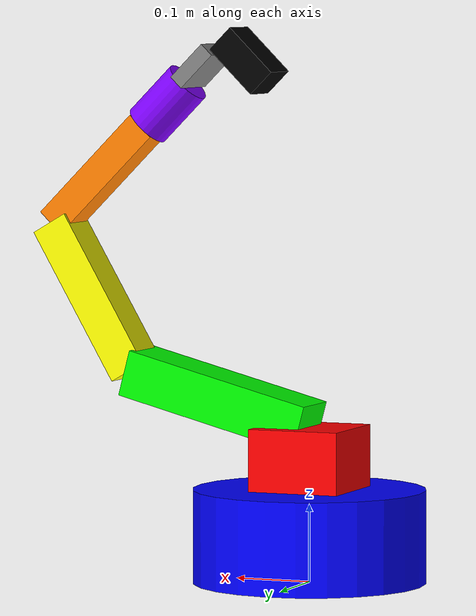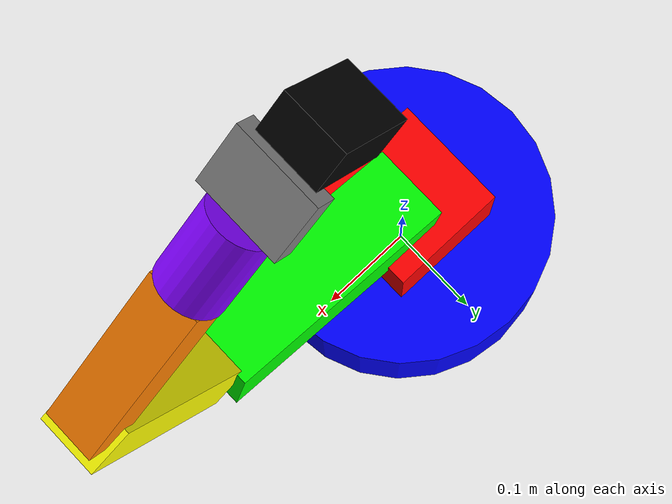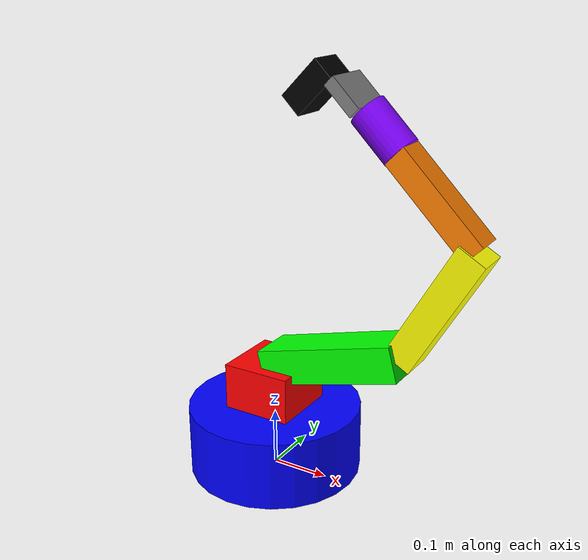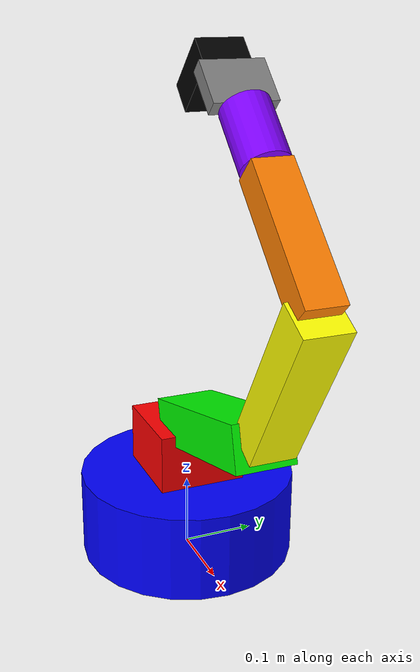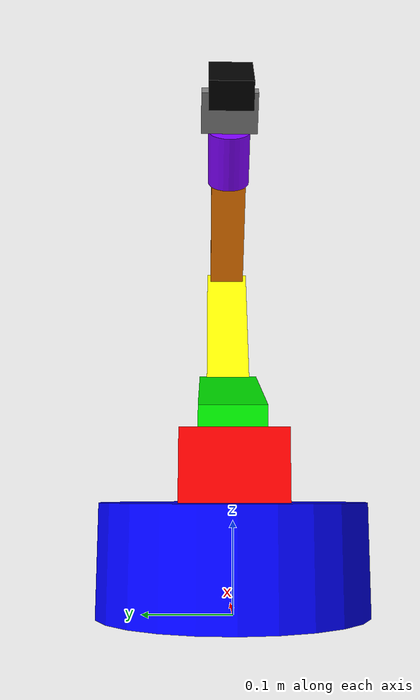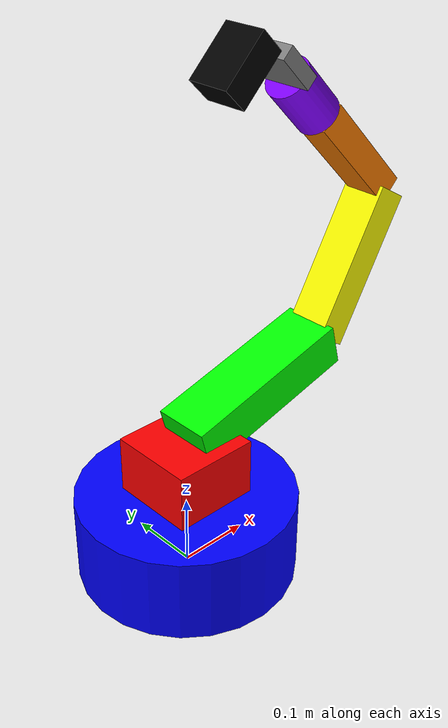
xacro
<?xml version="1.0"?>
<robot xmlns:xacro="http://www.ros.org/wiki/xacro" name="pegasus">
    <xacro:arg name="initial_positions_file" default="initial_positions.yaml" />

    <!-- Import pegasus urdf file -->
    <xacro:include filename="$(find pegasus_arm_description)/URDF/pegasus_arm.urdf.xacro" />

    <!-- Import control_xacro -->
    <xacro:include filename="pegasus.ros2_control.xacro" />

    <!-- Removed FakeSystem to prevent duplicate interface errors -->

</robot>

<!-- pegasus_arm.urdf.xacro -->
<robot name="pegasus" xmlns:xacro="http://www.ros.org/wiki/xacro">

  <!-- World Link (required for world_to_base_joint) -->
  <link name="world"/>

  <!-- Base Link - Base mechanism with internal spur gear -->
  <link name="base_link">
    <visual>
      <geometry>
        <cylinder radius="0.15" length="0.12"/>
      </geometry>
      <origin xyz="0 0 0.06" rpy="0 0 0"/>
      <material name="blue">
        <color rgba="0.0 0.0 1.0 1.0"/>
      </material>
    </visual>
    <collision>
      <geometry>
        <cylinder radius="0.15" length="0.12"/>
      </geometry>
      <origin xyz="0 0 0.06" rpy="0 0 0"/>
    </collision>
    <inertial>
      <origin xyz="0 0 0.06" rpy="0 0 0"/>
      <mass value="2.0"/>
      <inertia ixx="0.02" ixy="0" ixz="0" iyy="0.02" iyz="0" izz="0.035"/>
    </inertial>
  </link>

  <!-- Link 1 - Base upper part (Joint 5 in report - Base rotation) -->
  <link name="link1">
    <visual>
      <geometry><box size="0.12 0.12 0.08"/></geometry>
      <origin xyz="0 0 0.04" rpy="0 0 0"/>
      <material name="red">
        <color rgba="1.0 0.0 0.0 1.0"/>
      </material>
    </visual>
    <collision>
      <geometry><box size="0.12 0.12 0.08"/></geometry>
      <origin xyz="0 0 0.04" rpy="0 0 0"/>
    </collision>
    <inertial>
      <origin xyz="0 0 0.04" rpy="0 0 0"/>
      <mass value="0.8"/>
      <inertia ixx="0.008" ixy="0" ixz="0" iyy="0.008" iyz="0" izz="0.012"/>
    </inertial>
  </link>

  <!-- Link 2 - Shoulder link (Joint 4 in report - Shoulder joint with 2 motors) -->
  <link name="link2">
    <visual>
      <geometry><box size="0.25 0.08 0.06"/></geometry>
      <origin xyz="0.125 0 0" rpy="0 0 0"/>
      <material name="green">
        <color rgba="0.0 1.0 0.0 1.0"/>
      </material>
    </visual>
    <collision>
      <geometry><box size="0.25 0.08 0.06"/></geometry>
      <origin xyz="0.125 0 0" rpy="0 0 0"/>
    </collision>
    <inertial>
      <origin xyz="0.125 0 0" rpy="0 0 0"/>
      <mass value="0.7"/>
      <inertia ixx="0.005" ixy="0" ixz="0" iyy="0.015" iyz="0" izz="0.018"/>
    </inertial>
  </link>

  <!-- Link 3 - Upper arm link (Joint 3 in report - Elbow joint) -->
  <link name="link3">
    <visual>
      <geometry><box size="0.22 0.06 0.05"/></geometry>
      <origin xyz="0.11 0 0" rpy="0 0 0"/>
      <material name="yellow">
        <color rgba="1.0 1.0 0.0 1.0"/>
      </material>
    </visual>
    <collision>
      <geometry><box size="0.22 0.06 0.05"/></geometry>
      <origin xyz="0.11 0 0" rpy="0 0 0"/>
    </collision>
    <inertial>
      <origin xyz="0.11 0 0" rpy="0 0 0"/>
      <mass value="0.6"/>
      <inertia ixx="0.004" ixy="0" ixz="0" iyy="0.012" iyz="0" izz="0.014"/>
    </inertial>
  </link>

  <!-- Link 4 - Forearm link (Joint 2 in report) -->
  <link name="link4">
    <visual>
      <geometry><box size="0.18 0.05 0.04"/></geometry>
      <origin xyz="0.09 0 0" rpy="0 0 0"/>
      <material name="orange">
        <color rgba="1.0 0.5 0.0 1.0"/>
      </material>
    </visual>
    <collision>
      <geometry><box size="0.18 0.05 0.04"/></geometry>
      <origin xyz="0.09 0 0" rpy="0 0 0"/>
    </collision>
    <inertial>
      <origin xyz="0.09 0 0" rpy="0 0 0"/>
      <mass value="0.4"/>
      <inertia ixx="0.002" ixy="0" ixz="0" iyy="0.008" iyz="0" izz="0.009"/>
    </inertial>
  </link>

  <!-- Link 5 - Wrist link (Joint 1 in report - Wrist joint with 360° rotation) -->
  <link name="link5">
    <visual>
      <geometry><cylinder radius="0.03" length="0.08"/></geometry>
      <origin xyz="0.04 0 0" rpy="0 1.5708 0"/>
      <material name="purple">
        <color rgba="0.5 0.0 1.0 1.0"/>
      </material>
    </visual>
    <collision>
      <geometry><cylinder radius="0.03" length="0.08"/></geometry>
      <origin xyz="0.04 0 0" rpy="0 1.5708 0"/>
    </collision>
    <inertial>
      <origin xyz="0.04 0 0" rpy="0 0 0"/>
      <mass value="0.3"/>
      <inertia ixx="0.001" ixy="0" ixz="0" iyy="0.003" iyz="0" izz="0.003"/>
    </inertial>
  </link>

  <!-- Link 6 - Gripper mounting plate -->
  <link name="link6">
    <visual>
      <geometry><box size="0.06 0.08 0.02"/></geometry>
      <origin xyz="0.03 0 0" rpy="0 0 0"/>
      <material name="gray">
        <color rgba="0.5 0.5 0.5 1.0"/>
      </material>
    </visual>
    <collision>
      <geometry><box size="0.06 0.08 0.02"/></geometry>
      <origin xyz="0.03 0 0" rpy="0 0 0"/>
    </collision>
    <inertial>
      <origin xyz="0.03 0 0" rpy="0 0 0"/>
      <mass value="0.2"/>
      <inertia ixx="0.0008" ixy="0" ixz="0" iyy="0.0015" iyz="0" izz="0.002"/>
    </inertial>
  </link>

  <!-- End Effector Link - Gripper -->
  <link name="end_effector_link">
    <visual>
      <geometry><box size="0.04 0.06 0.08"/></geometry>
      <origin xyz="0.02 0 0.04" rpy="0 0 0"/>
      <material name="black">
        <color rgba="0.0 0.0 0.0 1.0"/>
      </material>
    </visual>
    <collision>
      <geometry><box size="0.04 0.06 0.08"/></geometry>
      <origin xyz="0.02 0 0.04" rpy="0 0 0"/>
    </collision>
    <inertial>
      <origin xyz="0.02 0 0.04" rpy="0 0 0"/>
      <mass value="0.15"/>
      <inertia ixx="0.0005" ixy="0" ixz="0" iyy="0.0008" iyz="0" izz="0.0008"/>
    </inertial>
  </link>

  <!-- Fixed joint from world to base -->
  <joint name="world_to_base_joint" type="fixed">
    <parent link="world"/>
    <child link="base_link"/>
    <origin xyz="0 0 0" rpy="0 0 0"/>
  </joint>

  <!-- Joint 1 - Base rotation (360° rotation) - Start at 0 (no change) -->
  <joint name="joint1" type="revolute">
    <parent link="base_link"/>
    <child link="link1"/>
    <origin xyz="0 0 0.12" rpy="0 0 0"/>
    <axis xyz="0 0 1"/>
    <limit lower="-6.28" upper="6.28" velocity="1.0" effort="111.0"/>
    <safety_controller k_velocity="0.1" k_position="0.1"/>
    <dynamics damping="0.2" friction="0.3"/>
  </joint>

  <!-- Joint 2 - Shoulder joint (35° range) - Start at -15° to lift arm up -->
  <joint name="joint2" type="revolute">
    <parent link="link1"/>
    <child link="link2"/>
    <origin xyz="0 0 0.08" rpy="0 -0.26 0"/>  <!-- -15° initial position -->
    <axis xyz="0 1 0"/>
    <limit lower="-0.61" upper="0.61" velocity="1.0" effort="60.0"/>
    <safety_controller k_velocity="0.1" k_position="0.1"/>
    <dynamics damping="0.15" friction="0.2"/>
  </joint>

  <!-- Joint 3 - Elbow joint (100° range) - Start at -45° to bend elbow -->
  <joint name="joint3" type="revolute">
    <parent link="link2"/>
    <child link="link3"/>
    <origin xyz="0.25 0 0" rpy="0 -0.785 0"/>  <!-- -45° initial position -->
    <axis xyz="0 1 0"/>
    <limit lower="-1.75" upper="1.75" velocity="1.0" effort="30.0"/>
    <safety_controller k_velocity="0.1" k_position="0.1"/>
    <dynamics damping="0.1" friction="0.15"/>
  </joint>

  <!-- Joint 4 - Forearm joint (75° range) - Start at -30° to continue bend -->
  <joint name="joint4" type="revolute">
    <parent link="link3"/>
    <child link="link4"/>
    <origin xyz="0.22 0 0" rpy="0 -1.31 0"/><!-- -210° initial position -->
    <axis xyz="0 1 0"/>
    <limit lower="-1.31" upper="1.31" velocity="1.0" effort="30.0"/>
    <safety_controller k_velocity="0.1" k_position="0.1"/>
    <dynamics damping="0.1" friction="0.1"/>
  </joint>

  <!-- Joint 5 - Wrist rotation (360° rotation) - Start at 0 (no change) -->
  <joint name="joint5" type="revolute">
    <parent link="link4"/>
    <child link="link5"/>
    <origin xyz="0.18 0 0" rpy="0 0 0"/>
    <axis xyz="1 0 0"/>
    <limit lower="-6.28" upper="6.28" velocity="1.0" effort="30.0"/>
    <safety_controller k_velocity="0.1" k_position="0.1"/>
    <dynamics damping="0.05" friction="0.05"/>
  </joint>

  <!-- Joint 6 - Gripper mounting (fixed) -->
  <joint name="joint6" type="fixed">
    <parent link="link5"/>
    <child link="link6"/>
    <origin xyz="0.08 0 0" rpy="0 0 0"/>
  </joint>

  <!-- Joint from gripper mount to end effector -->
  <joint name="joint6_to_end_effector" type="fixed">
    <parent link="link6"/>
    <child link="end_effector_link"/>
    <origin xyz="0.06 0 0" rpy="0 0 0"/>
  </joint>

  <!-- ros2_control Configuration -->
  <ros2_control name="PegasusArm" type="system">
    <hardware>
      <plugin>mock_components/GenericSystem</plugin>
    </hardware>
    <joint name="joint1">
      <command_interface name="position">
        <param name="min">-6.28</param>
        <param name="max">6.28</param>
      </command_interface>
      <state_interface name="position"/>
      <state_interface name="velocity"/>
    </joint>
    <joint name="joint2">
      <command_interface name="position">
        <param name="min">-0.61</param>
        <param name="max">0.61</param>
      </command_interface>
      <state_interface name="position"/>
      <state_interface name="velocity"/>
    </joint>
    <joint name="joint3">
      <command_interface name="position">
        <param name="min">-1.75</param>
        <param name="max">1.75</param>
      </command_interface>
      <state_interface name="position"/>
      <state_interface name="velocity"/>
    </joint>
    <joint name="joint4">
      <command_interface name="position">
        <param name="min">-1.31</param>
        <param name="max">1.31</param>
      </command_interface>
      <state_interface name="position"/>
      <state_interface name="velocity"/>
    </joint>
    <joint name="joint5">
      <command_interface name="position">
        <param name="min">-6.28</param>
        <param name="max">6.28</param>
      </command_interface>
      <state_interface name="position"/>
      <state_interface name="velocity"/>
    </joint>
  </ros2_control>

  <!-- Gazebo-specific tags -->
  <gazebo>
    <plugin name="gazebo_ros_control" filename="libgazebo_ros_control.so">
      <robotNamespace>/pegasus</robotNamespace>
    </plugin>
  </gazebo>

  <!-- Gazebo material properties for better visualization -->
  <gazebo reference="base_link">
    <material>Gazebo/Blue</material>
    <mu1>0.2</mu1>
    <mu2>0.2</mu2>
  </gazebo>

  <gazebo reference="link1">
    <material>Gazebo/Red</material>
    <mu1>0.2</mu1>
    <mu2>0.2</mu2>
  </gazebo>

  <gazebo reference="link2">
    <material>Gazebo/Green</material>
    <mu1>0.2</mu1>
    <mu2>0.2</mu2>
  </gazebo>

  <gazebo reference="link3">
    <material>Gazebo/Yellow</material>
    <mu1>0.2</mu1>
    <mu2>0.2</mu2>
  </gazebo>

  <gazebo reference="link4">
    <material>Gazebo/Orange</material>
    <mu1>0.2</mu1>
    <mu2>0.2</mu2>
  </gazebo>

  <gazebo reference="link5">
    <material>Gazebo/Purple</material>
    <mu1>0.2</mu1>
    <mu2>0.2</mu2>
  </gazebo>

  <gazebo reference="link6">
    <material>Gazebo/Grey</material>
    <mu1>0.2</mu1>
    <mu2>0.2</mu2>
  </gazebo>

  <gazebo reference="end_effector_link">
    <material>Gazebo/Black</material>
    <mu1>0.2</mu1>
    <mu2>0.2</mu2>
  </gazebo>

</robot>
